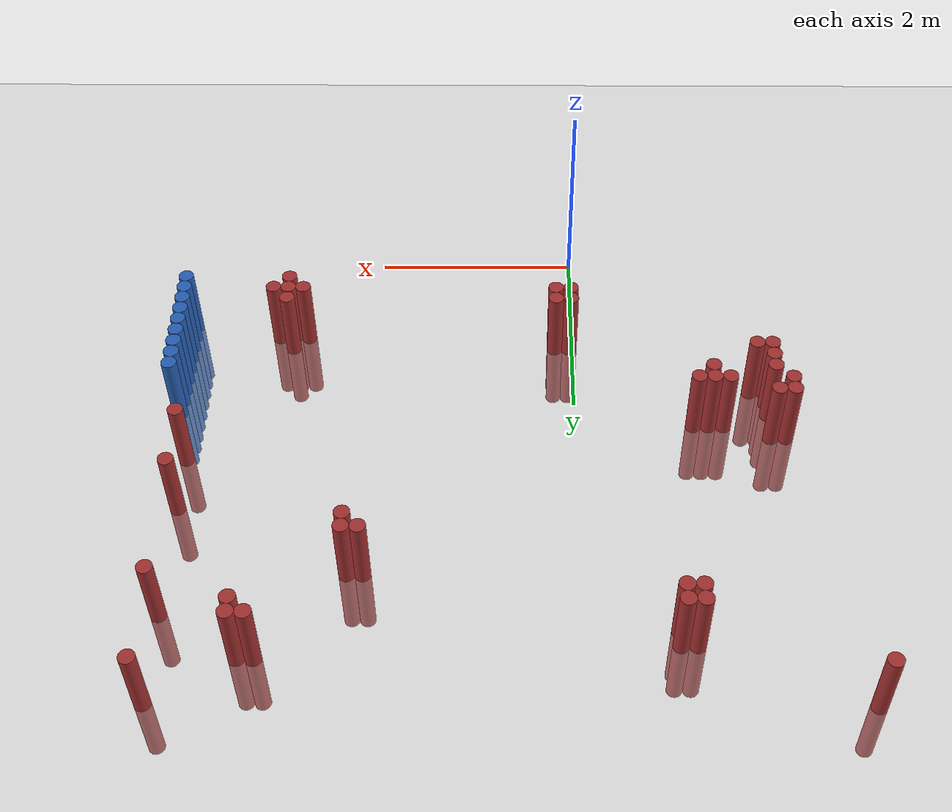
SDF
<sdf version="1.6">
 <world name="default">
  <model name="ground_plane">
   <static>1</static>
   <link name="link">
    <collision name="collision">
     <geometry><plane><normal>0 0 1</normal><size>100 100</size></plane></geometry>
     <surface><friction><ode><mu>100</mu><mu2>50</mu2></ode></friction></surface>
    </collision>
    <visual name="visual">
     <cast_shadows>0</cast_shadows>
     <geometry><plane><normal>0 0 1</normal><size>100 100</size></plane></geometry>
     <material>
      <script><uri>file://media/materials/scripts/gazebo.material</uri><name>Gazebo/Grey</name></script>
     </material>
    </visual>
   </link>
  </model>
  <model name="unit_cylinder_126">
   <static>1</static>
   <pose>3.925000 0.925000 0.000000 0.000000 0.000000 0.000000</pose>
   <link name="link">
    <inertial>
     <mass>1</mass>
     <inertia><ixx>0.145833</ixx><ixy>0</ixy><ixz>0</ixz><iyy>0.145833</iyy><iyz>0</iyz><izz>0.125</izz></inertia>
    </inertial>
    <collision name="collision">
     <geometry><cylinder><radius>0.075000</radius><length>1.5</length></cylinder></geometry>
    </collision>
    <visual name="visual">
     <geometry><cylinder><radius>0.075000</radius><length>1.5</length></cylinder></geometry>
     <material>
      <ambient>0.152000 0.379000 0.720000 1</ambient>
      <diffuse>0.152000 0.379000 0.720000 1</diffuse>
     </material>
     <material>
      <script><name>Gazebo/Grey</name><uri>file://media/materials/scripts/gazebo.material</uri></script>
     </material>
    </visual>
   </link>
  </model>
  <model name="unit_cylinder_128">
   <static>1</static>
   <pose>3.925000 1.075000 0.000000 0.000000 0.000000 0.000000</pose>
   <link name="link">
    <inertial>
     <mass>1</mass>
     <inertia><ixx>0.145833</ixx><ixy>0</ixy><ixz>0</ixz><iyy>0.145833</iyy><iyz>0</iyz><izz>0.125</izz></inertia>
    </inertial>
    <collision name="collision">
     <geometry><cylinder><radius>0.075000</radius><length>1.5</length></cylinder></geometry>
    </collision>
    <visual name="visual">
     <geometry><cylinder><radius>0.075000</radius><length>1.5</length></cylinder></geometry>
     <material>
      <ambient>0.152000 0.379000 0.720000 1</ambient>
      <diffuse>0.152000 0.379000 0.720000 1</diffuse>
     </material>
     <material>
      <script><name>Gazebo/Grey</name><uri>file://media/materials/scripts/gazebo.material</uri></script>
     </material>
    </visual>
   </link>
  </model>
  <model name="unit_cylinder_130">
   <static>1</static>
   <pose>3.925000 1.225000 0.000000 0.000000 0.000000 0.000000</pose>
   <link name="link">
    <inertial>
     <mass>1</mass>
     <inertia><ixx>0.145833</ixx><ixy>0</ixy><ixz>0</ixz><iyy>0.145833</iyy><iyz>0</iyz><izz>0.125</izz></inertia>
    </inertial>
    <collision name="collision">
     <geometry><cylinder><radius>0.075000</radius><length>1.5</length></cylinder></geometry>
    </collision>
    <visual name="visual">
     <geometry><cylinder><radius>0.075000</radius><length>1.5</length></cylinder></geometry>
     <material>
      <ambient>0.152000 0.379000 0.720000 1</ambient>
      <diffuse>0.152000 0.379000 0.720000 1</diffuse>
     </material>
     <material>
      <script><name>Gazebo/Grey</name><uri>file://media/materials/scripts/gazebo.material</uri></script>
     </material>
    </visual>
   </link>
  </model>
  <model name="unit_cylinder_132">
   <static>1</static>
   <pose>3.925000 1.375000 0.000000 0.000000 0.000000 0.000000</pose>
   <link name="link">
    <inertial>
     <mass>1</mass>
     <inertia><ixx>0.145833</ixx><ixy>0</ixy><ixz>0</ixz><iyy>0.145833</iyy><iyz>0</iyz><izz>0.125</izz></inertia>
    </inertial>
    <collision name="collision">
     <geometry><cylinder><radius>0.075000</radius><length>1.5</length></cylinder></geometry>
    </collision>
    <visual name="visual">
     <geometry><cylinder><radius>0.075000</radius><length>1.5</length></cylinder></geometry>
     <material>
      <ambient>0.152000 0.379000 0.720000 1</ambient>
      <diffuse>0.152000 0.379000 0.720000 1</diffuse>
     </material>
     <material>
      <script><name>Gazebo/Grey</name><uri>file://media/materials/scripts/gazebo.material</uri></script>
     </material>
    </visual>
   </link>
  </model>
  <model name="unit_cylinder_134">
   <static>1</static>
   <pose>3.925000 1.525000 0.000000 0.000000 0.000000 0.000000</pose>
   <link name="link">
    <inertial>
     <mass>1</mass>
     <inertia><ixx>0.145833</ixx><ixy>0</ixy><ixz>0</ixz><iyy>0.145833</iyy><iyz>0</iyz><izz>0.125</izz></inertia>
    </inertial>
    <collision name="collision">
     <geometry><cylinder><radius>0.075000</radius><length>1.5</length></cylinder></geometry>
    </collision>
    <visual name="visual">
     <geometry><cylinder><radius>0.075000</radius><length>1.5</length></cylinder></geometry>
     <material>
      <ambient>0.152000 0.379000 0.720000 1</ambient>
      <diffuse>0.152000 0.379000 0.720000 1</diffuse>
     </material>
     <material>
      <script><name>Gazebo/Grey</name><uri>file://media/materials/scripts/gazebo.material</uri></script>
     </material>
    </visual>
   </link>
  </model>
  <model name="unit_cylinder_136">
   <static>1</static>
   <pose>3.925000 1.675000 0.000000 0.000000 0.000000 0.000000</pose>
   <link name="link">
    <inertial>
     <mass>1</mass>
     <inertia><ixx>0.145833</ixx><ixy>0</ixy><ixz>0</ixz><iyy>0.145833</iyy><iyz>0</iyz><izz>0.125</izz></inertia>
    </inertial>
    <collision name="collision">
     <geometry><cylinder><radius>0.075000</radius><length>1.5</length></cylinder></geometry>
    </collision>
    <visual name="visual">
     <geometry><cylinder><radius>0.075000</radius><length>1.5</length></cylinder></geometry>
     <material>
      <ambient>0.152000 0.379000 0.720000 1</ambient>
      <diffuse>0.152000 0.379000 0.720000 1</diffuse>
     </material>
     <material>
      <script><name>Gazebo/Grey</name><uri>file://media/materials/scripts/gazebo.material</uri></script>
     </material>
    </visual>
   </link>
  </model>
  <model name="unit_cylinder_138">
   <static>1</static>
   <pose>3.925000 1.825000 0.000000 0.000000 0.000000 0.000000</pose>
   <link name="link">
    <inertial>
     <mass>1</mass>
     <inertia><ixx>0.145833</ixx><ixy>0</ixy><ixz>0</ixz><iyy>0.145833</iyy><iyz>0</iyz><izz>0.125</izz></inertia>
    </inertial>
    <collision name="collision">
     <geometry><cylinder><radius>0.075000</radius><length>1.5</length></cylinder></geometry>
    </collision>
    <visual name="visual">
     <geometry><cylinder><radius>0.075000</radius><length>1.5</length></cylinder></geometry>
     <material>
      <ambient>0.152000 0.379000 0.720000 1</ambient>
      <diffuse>0.152000 0.379000 0.720000 1</diffuse>
     </material>
     <material>
      <script><name>Gazebo/Grey</name><uri>file://media/materials/scripts/gazebo.material</uri></script>
     </material>
    </visual>
   </link>
  </model>
  <model name="unit_cylinder_140">
   <static>1</static>
   <pose>3.925000 1.975000 0.000000 0.000000 0.000000 0.000000</pose>
   <link name="link">
    <inertial>
     <mass>1</mass>
     <inertia><ixx>0.145833</ixx><ixy>0</ixy><ixz>0</ixz><iyy>0.145833</iyy><iyz>0</iyz><izz>0.125</izz></inertia>
    </inertial>
    <collision name="collision">
     <geometry><cylinder><radius>0.075000</radius><length>1.5</length></cylinder></geometry>
    </collision>
    <visual name="visual">
     <geometry><cylinder><radius>0.075000</radius><length>1.5</length></cylinder></geometry>
     <material>
      <ambient>0.152000 0.379000 0.720000 1</ambient>
      <diffuse>0.152000 0.379000 0.720000 1</diffuse>
     </material>
     <material>
      <script><name>Gazebo/Grey</name><uri>file://media/materials/scripts/gazebo.material</uri></script>
     </material>
    </visual>
   </link>
  </model>
  <model name="unit_cylinder_142">
   <static>1</static>
   <pose>3.925000 2.125000 0.000000 0.000000 0.000000 0.000000</pose>
   <link name="link">
    <inertial>
     <mass>1</mass>
     <inertia><ixx>0.145833</ixx><ixy>0</ixy><ixz>0</ixz><iyy>0.145833</iyy><iyz>0</iyz><izz>0.125</izz></inertia>
    </inertial>
    <collision name="collision">
     <geometry><cylinder><radius>0.075000</radius><length>1.5</length></cylinder></geometry>
    </collision>
    <visual name="visual">
     <geometry><cylinder><radius>0.075000</radius><length>1.5</length></cylinder></geometry>
     <material>
      <ambient>0.152000 0.379000 0.720000 1</ambient>
      <diffuse>0.152000 0.379000 0.720000 1</diffuse>
     </material>
     <material>
      <script><name>Gazebo/Grey</name><uri>file://media/materials/scripts/gazebo.material</uri></script>
     </material>
    </visual>
   </link>
  </model>
  <model name="unit_cylinder_318">
   <static>1</static>
   <pose>-2.525000 5.425000 0.000000 0.000000 0.000000 0.000000</pose>
   <link name="link">
    <inertial>
     <mass>1</mass>
     <inertia><ixx>0.145833</ixx><ixy>0</ixy><ixz>0</ixz><iyy>0.145833</iyy><iyz>0</iyz><izz>0.125</izz></inertia>
    </inertial>
    <collision name="collision">
     <geometry><cylinder><radius>0.075000</radius><length>1.5</length></cylinder></geometry>
    </collision>
    <visual name="visual">
     <geometry><cylinder><radius>0.075000</radius><length>1.5</length></cylinder></geometry>
     <material>
      <ambient>0.648000 0.192000 0.192000 1</ambient>
      <diffuse>0.648000 0.192000 0.192000 1</diffuse>
     </material>
     <material>
      <script><name>Gazebo/Grey</name><uri>file://media/materials/scripts/gazebo.material</uri></script>
     </material>
    </visual>
   </link>
  </model>
  <model name="unit_cylinder_319">
   <static>1</static>
   <pose>-2.075000 2.275000 0.000000 0.000000 0.000000 0.000000</pose>
   <link name="link">
    <inertial>
     <mass>1</mass>
     <inertia><ixx>0.145833</ixx><ixy>0</ixy><ixz>0</ixz><iyy>0.145833</iyy><iyz>0</iyz><izz>0.125</izz></inertia>
    </inertial>
    <collision name="collision">
     <geometry><cylinder><radius>0.075000</radius><length>1.5</length></cylinder></geometry>
    </collision>
    <visual name="visual">
     <geometry><cylinder><radius>0.075000</radius><length>1.5</length></cylinder></geometry>
     <material>
      <ambient>0.648000 0.192000 0.192000 1</ambient>
      <diffuse>0.648000 0.192000 0.192000 1</diffuse>
     </material>
     <material>
      <script><name>Gazebo/Grey</name><uri>file://media/materials/scripts/gazebo.material</uri></script>
     </material>
    </visual>
   </link>
  </model>
  <model name="unit_cylinder_320">
   <static>1</static>
   <pose>-2.075000 2.425000 0.000000 0.000000 0.000000 0.000000</pose>
   <link name="link">
    <inertial>
     <mass>1</mass>
     <inertia><ixx>0.145833</ixx><ixy>0</ixy><ixz>0</ixz><iyy>0.145833</iyy><iyz>0</iyz><izz>0.125</izz></inertia>
    </inertial>
    <collision name="collision">
     <geometry><cylinder><radius>0.075000</radius><length>1.5</length></cylinder></geometry>
    </collision>
    <visual name="visual">
     <geometry><cylinder><radius>0.075000</radius><length>1.5</length></cylinder></geometry>
     <material>
      <ambient>0.648000 0.192000 0.192000 1</ambient>
      <diffuse>0.648000 0.192000 0.192000 1</diffuse>
     </material>
     <material>
      <script><name>Gazebo/Grey</name><uri>file://media/materials/scripts/gazebo.material</uri></script>
     </material>
    </visual>
   </link>
  </model>
  <model name="unit_cylinder_321">
   <static>1</static>
   <pose>-1.925000 1.825000 0.000000 0.000000 0.000000 0.000000</pose>
   <link name="link">
    <inertial>
     <mass>1</mass>
     <inertia><ixx>0.145833</ixx><ixy>0</ixy><ixz>0</ixz><iyy>0.145833</iyy><iyz>0</iyz><izz>0.125</izz></inertia>
    </inertial>
    <collision name="collision">
     <geometry><cylinder><radius>0.075000</radius><length>1.5</length></cylinder></geometry>
    </collision>
    <visual name="visual">
     <geometry><cylinder><radius>0.075000</radius><length>1.5</length></cylinder></geometry>
     <material>
      <ambient>0.648000 0.192000 0.192000 1</ambient>
      <diffuse>0.648000 0.192000 0.192000 1</diffuse>
     </material>
     <material>
      <script><name>Gazebo/Grey</name><uri>file://media/materials/scripts/gazebo.material</uri></script>
     </material>
    </visual>
   </link>
  </model>
  <model name="unit_cylinder_322">
   <static>1</static>
   <pose>-1.925000 1.975000 0.000000 0.000000 0.000000 0.000000</pose>
   <link name="link">
    <inertial>
     <mass>1</mass>
     <inertia><ixx>0.145833</ixx><ixy>0</ixy><ixz>0</ixz><iyy>0.145833</iyy><iyz>0</iyz><izz>0.125</izz></inertia>
    </inertial>
    <collision name="collision">
     <geometry><cylinder><radius>0.075000</radius><length>1.5</length></cylinder></geometry>
    </collision>
    <visual name="visual">
     <geometry><cylinder><radius>0.075000</radius><length>1.5</length></cylinder></geometry>
     <material>
      <ambient>0.648000 0.192000 0.192000 1</ambient>
      <diffuse>0.648000 0.192000 0.192000 1</diffuse>
     </material>
     <material>
      <script><name>Gazebo/Grey</name><uri>file://media/materials/scripts/gazebo.material</uri></script>
     </material>
    </visual>
   </link>
  </model>
  <model name="unit_cylinder_323">
   <static>1</static>
   <pose>-1.925000 2.125000 0.000000 0.000000 0.000000 0.000000</pose>
   <link name="link">
    <inertial>
     <mass>1</mass>
     <inertia><ixx>0.145833</ixx><ixy>0</ixy><ixz>0</ixz><iyy>0.145833</iyy><iyz>0</iyz><izz>0.125</izz></inertia>
    </inertial>
    <collision name="collision">
     <geometry><cylinder><radius>0.075000</radius><length>1.5</length></cylinder></geometry>
    </collision>
    <visual name="visual">
     <geometry><cylinder><radius>0.075000</radius><length>1.5</length></cylinder></geometry>
     <material>
      <ambient>0.648000 0.192000 0.192000 1</ambient>
      <diffuse>0.648000 0.192000 0.192000 1</diffuse>
     </material>
     <material>
      <script><name>Gazebo/Grey</name><uri>file://media/materials/scripts/gazebo.material</uri></script>
     </material>
    </visual>
   </link>
  </model>
  <model name="unit_cylinder_324">
   <static>1</static>
   <pose>-1.925000 2.425000 0.000000 0.000000 0.000000 0.000000</pose>
   <link name="link">
    <inertial>
     <mass>1</mass>
     <inertia><ixx>0.145833</ixx><ixy>0</ixy><ixz>0</ixz><iyy>0.145833</iyy><iyz>0</iyz><izz>0.125</izz></inertia>
    </inertial>
    <collision name="collision">
     <geometry><cylinder><radius>0.075000</radius><length>1.5</length></cylinder></geometry>
    </collision>
    <visual name="visual">
     <geometry><cylinder><radius>0.075000</radius><length>1.5</length></cylinder></geometry>
     <material>
      <ambient>0.648000 0.192000 0.192000 1</ambient>
      <diffuse>0.648000 0.192000 0.192000 1</diffuse>
     </material>
     <material>
      <script><name>Gazebo/Grey</name><uri>file://media/materials/scripts/gazebo.material</uri></script>
     </material>
    </visual>
   </link>
  </model>
  <model name="unit_cylinder_325">
   <static>1</static>
   <pose>-1.775000 1.825000 0.000000 0.000000 0.000000 0.000000</pose>
   <link name="link">
    <inertial>
     <mass>1</mass>
     <inertia><ixx>0.145833</ixx><ixy>0</ixy><ixz>0</ixz><iyy>0.145833</iyy><iyz>0</iyz><izz>0.125</izz></inertia>
    </inertial>
    <collision name="collision">
     <geometry><cylinder><radius>0.075000</radius><length>1.5</length></cylinder></geometry>
    </collision>
    <visual name="visual">
     <geometry><cylinder><radius>0.075000</radius><length>1.5</length></cylinder></geometry>
     <material>
      <ambient>0.648000 0.192000 0.192000 1</ambient>
      <diffuse>0.648000 0.192000 0.192000 1</diffuse>
     </material>
     <material>
      <script><name>Gazebo/Grey</name><uri>file://media/materials/scripts/gazebo.material</uri></script>
     </material>
    </visual>
   </link>
  </model>
  <model name="unit_cylinder_326">
   <static>1</static>
   <pose>-1.475000 2.275000 0.000000 0.000000 0.000000 0.000000</pose>
   <link name="link">
    <inertial>
     <mass>1</mass>
     <inertia><ixx>0.145833</ixx><ixy>0</ixy><ixz>0</ixz><iyy>0.145833</iyy><iyz>0</iyz><izz>0.125</izz></inertia>
    </inertial>
    <collision name="collision">
     <geometry><cylinder><radius>0.075000</radius><length>1.5</length></cylinder></geometry>
    </collision>
    <visual name="visual">
     <geometry><cylinder><radius>0.075000</radius><length>1.5</length></cylinder></geometry>
     <material>
      <ambient>0.648000 0.192000 0.192000 1</ambient>
      <diffuse>0.648000 0.192000 0.192000 1</diffuse>
     </material>
     <material>
      <script><name>Gazebo/Grey</name><uri>file://media/materials/scripts/gazebo.material</uri></script>
     </material>
    </visual>
   </link>
  </model>
  <model name="unit_cylinder_327">
   <static>1</static>
   <pose>-1.325000 2.125000 0.000000 0.000000 0.000000 0.000000</pose>
   <link name="link">
    <inertial>
     <mass>1</mass>
     <inertia><ixx>0.145833</ixx><ixy>0</ixy><ixz>0</ixz><iyy>0.145833</iyy><iyz>0</iyz><izz>0.125</izz></inertia>
    </inertial>
    <collision name="collision">
     <geometry><cylinder><radius>0.075000</radius><length>1.5</length></cylinder></geometry>
    </collision>
    <visual name="visual">
     <geometry><cylinder><radius>0.075000</radius><length>1.5</length></cylinder></geometry>
     <material>
      <ambient>0.648000 0.192000 0.192000 1</ambient>
      <diffuse>0.648000 0.192000 0.192000 1</diffuse>
     </material>
     <material>
      <script><name>Gazebo/Grey</name><uri>file://media/materials/scripts/gazebo.material</uri></script>
     </material>
    </visual>
   </link>
  </model>
  <model name="unit_cylinder_328">
   <static>1</static>
   <pose>-1.325000 2.275000 0.000000 0.000000 0.000000 0.000000</pose>
   <link name="link">
    <inertial>
     <mass>1</mass>
     <inertia><ixx>0.145833</ixx><ixy>0</ixy><ixz>0</ixz><iyy>0.145833</iyy><iyz>0</iyz><izz>0.125</izz></inertia>
    </inertial>
    <collision name="collision">
     <geometry><cylinder><radius>0.075000</radius><length>1.5</length></cylinder></geometry>
    </collision>
    <visual name="visual">
     <geometry><cylinder><radius>0.075000</radius><length>1.5</length></cylinder></geometry>
     <material>
      <ambient>0.648000 0.192000 0.192000 1</ambient>
      <diffuse>0.648000 0.192000 0.192000 1</diffuse>
     </material>
     <material>
      <script><name>Gazebo/Grey</name><uri>file://media/materials/scripts/gazebo.material</uri></script>
     </material>
    </visual>
   </link>
  </model>
  <model name="unit_cylinder_329">
   <static>1</static>
   <pose>-1.175000 2.275000 0.000000 0.000000 0.000000 0.000000</pose>
   <link name="link">
    <inertial>
     <mass>1</mass>
     <inertia><ixx>0.145833</ixx><ixy>0</ixy><ixz>0</ixz><iyy>0.145833</iyy><iyz>0</iyz><izz>0.125</izz></inertia>
    </inertial>
    <collision name="collision">
     <geometry><cylinder><radius>0.075000</radius><length>1.5</length></cylinder></geometry>
    </collision>
    <visual name="visual">
     <geometry><cylinder><radius>0.075000</radius><length>1.5</length></cylinder></geometry>
     <material>
      <ambient>0.648000 0.192000 0.192000 1</ambient>
      <diffuse>0.648000 0.192000 0.192000 1</diffuse>
     </material>
     <material>
      <script><name>Gazebo/Grey</name><uri>file://media/materials/scripts/gazebo.material</uri></script>
     </material>
    </visual>
   </link>
  </model>
  <model name="unit_cylinder_330">
   <static>1</static>
   <pose>-1.025000 4.675000 0.000000 0.000000 0.000000 0.000000</pose>
   <link name="link">
    <inertial>
     <mass>1</mass>
     <inertia><ixx>0.145833</ixx><ixy>0</ixy><ixz>0</ixz><iyy>0.145833</iyy><iyz>0</iyz><izz>0.125</izz></inertia>
    </inertial>
    <collision name="collision">
     <geometry><cylinder><radius>0.075000</radius><length>1.5</length></cylinder></geometry>
    </collision>
    <visual name="visual">
     <geometry><cylinder><radius>0.075000</radius><length>1.5</length></cylinder></geometry>
     <material>
      <ambient>0.648000 0.192000 0.192000 1</ambient>
      <diffuse>0.648000 0.192000 0.192000 1</diffuse>
     </material>
     <material>
      <script><name>Gazebo/Grey</name><uri>file://media/materials/scripts/gazebo.material</uri></script>
     </material>
    </visual>
   </link>
  </model>
  <model name="unit_cylinder_331">
   <static>1</static>
   <pose>-1.025000 4.825000 0.000000 0.000000 0.000000 0.000000</pose>
   <link name="link">
    <inertial>
     <mass>1</mass>
     <inertia><ixx>0.145833</ixx><ixy>0</ixy><ixz>0</ixz><iyy>0.145833</iyy><iyz>0</iyz><izz>0.125</izz></inertia>
    </inertial>
    <collision name="collision">
     <geometry><cylinder><radius>0.075000</radius><length>1.5</length></cylinder></geometry>
    </collision>
    <visual name="visual">
     <geometry><cylinder><radius>0.075000</radius><length>1.5</length></cylinder></geometry>
     <material>
      <ambient>0.648000 0.192000 0.192000 1</ambient>
      <diffuse>0.648000 0.192000 0.192000 1</diffuse>
     </material>
     <material>
      <script><name>Gazebo/Grey</name><uri>file://media/materials/scripts/gazebo.material</uri></script>
     </material>
    </visual>
   </link>
  </model>
  <model name="unit_cylinder_332">
   <static>1</static>
   <pose>-0.875000 4.675000 0.000000 0.000000 0.000000 0.000000</pose>
   <link name="link">
    <inertial>
     <mass>1</mass>
     <inertia><ixx>0.145833</ixx><ixy>0</ixy><ixz>0</ixz><iyy>0.145833</iyy><iyz>0</iyz><izz>0.125</izz></inertia>
    </inertial>
    <collision name="collision">
     <geometry><cylinder><radius>0.075000</radius><length>1.5</length></cylinder></geometry>
    </collision>
    <visual name="visual">
     <geometry><cylinder><radius>0.075000</radius><length>1.5</length></cylinder></geometry>
     <material>
      <ambient>0.648000 0.192000 0.192000 1</ambient>
      <diffuse>0.648000 0.192000 0.192000 1</diffuse>
     </material>
     <material>
      <script><name>Gazebo/Grey</name><uri>file://media/materials/scripts/gazebo.material</uri></script>
     </material>
    </visual>
   </link>
  </model>
  <model name="unit_cylinder_333">
   <static>1</static>
   <pose>-0.875000 4.825000 0.000000 0.000000 0.000000 0.000000</pose>
   <link name="link">
    <inertial>
     <mass>1</mass>
     <inertia><ixx>0.145833</ixx><ixy>0</ixy><ixz>0</ixz><iyy>0.145833</iyy><iyz>0</iyz><izz>0.125</izz></inertia>
    </inertial>
    <collision name="collision">
     <geometry><cylinder><radius>0.075000</radius><length>1.5</length></cylinder></geometry>
    </collision>
    <visual name="visual">
     <geometry><cylinder><radius>0.075000</radius><length>1.5</length></cylinder></geometry>
     <material>
      <ambient>0.648000 0.192000 0.192000 1</ambient>
      <diffuse>0.648000 0.192000 0.192000 1</diffuse>
     </material>
     <material>
      <script><name>Gazebo/Grey</name><uri>file://media/materials/scripts/gazebo.material</uri></script>
     </material>
    </visual>
   </link>
  </model>
  <model name="unit_cylinder_338">
   <static>1</static>
   <pose>0.025000 1.075000 0.000000 0.000000 0.000000 0.000000</pose>
   <link name="link">
    <inertial>
     <mass>1</mass>
     <inertia><ixx>0.145833</ixx><ixy>0</ixy><ixz>0</ixz><iyy>0.145833</iyy><iyz>0</iyz><izz>0.125</izz></inertia>
    </inertial>
    <collision name="collision">
     <geometry><cylinder><radius>0.075000</radius><length>1.5</length></cylinder></geometry>
    </collision>
    <visual name="visual">
     <geometry><cylinder><radius>0.075000</radius><length>1.5</length></cylinder></geometry>
     <material>
      <ambient>0.648000 0.192000 0.192000 1</ambient>
      <diffuse>0.648000 0.192000 0.192000 1</diffuse>
     </material>
     <material>
      <script><name>Gazebo/Grey</name><uri>file://media/materials/scripts/gazebo.material</uri></script>
     </material>
    </visual>
   </link>
  </model>
  <model name="unit_cylinder_339">
   <static>1</static>
   <pose>0.025000 1.225000 0.000000 0.000000 0.000000 0.000000</pose>
   <link name="link">
    <inertial>
     <mass>1</mass>
     <inertia><ixx>0.145833</ixx><ixy>0</ixy><ixz>0</ixz><iyy>0.145833</iyy><iyz>0</iyz><izz>0.125</izz></inertia>
    </inertial>
    <collision name="collision">
     <geometry><cylinder><radius>0.075000</radius><length>1.5</length></cylinder></geometry>
    </collision>
    <visual name="visual">
     <geometry><cylinder><radius>0.075000</radius><length>1.5</length></cylinder></geometry>
     <material>
      <ambient>0.648000 0.192000 0.192000 1</ambient>
      <diffuse>0.648000 0.192000 0.192000 1</diffuse>
     </material>
     <material>
      <script><name>Gazebo/Grey</name><uri>file://media/materials/scripts/gazebo.material</uri></script>
     </material>
    </visual>
   </link>
  </model>
  <model name="unit_cylinder_340">
   <static>1</static>
   <pose>0.175000 1.075000 0.000000 0.000000 0.000000 0.000000</pose>
   <link name="link">
    <inertial>
     <mass>1</mass>
     <inertia><ixx>0.145833</ixx><ixy>0</ixy><ixz>0</ixz><iyy>0.145833</iyy><iyz>0</iyz><izz>0.125</izz></inertia>
    </inertial>
    <collision name="collision">
     <geometry><cylinder><radius>0.075000</radius><length>1.5</length></cylinder></geometry>
    </collision>
    <visual name="visual">
     <geometry><cylinder><radius>0.075000</radius><length>1.5</length></cylinder></geometry>
     <material>
      <ambient>0.648000 0.192000 0.192000 1</ambient>
      <diffuse>0.648000 0.192000 0.192000 1</diffuse>
     </material>
     <material>
      <script><name>Gazebo/Grey</name><uri>file://media/materials/scripts/gazebo.material</uri></script>
     </material>
    </visual>
   </link>
  </model>
  <model name="unit_cylinder_341">
   <static>1</static>
   <pose>0.175000 1.225000 0.000000 0.000000 0.000000 0.000000</pose>
   <link name="link">
    <inertial>
     <mass>1</mass>
     <inertia><ixx>0.145833</ixx><ixy>0</ixy><ixz>0</ixz><iyy>0.145833</iyy><iyz>0</iyz><izz>0.125</izz></inertia>
    </inertial>
    <collision name="collision">
     <geometry><cylinder><radius>0.075000</radius><length>1.5</length></cylinder></geometry>
    </collision>
    <visual name="visual">
     <geometry><cylinder><radius>0.075000</radius><length>1.5</length></cylinder></geometry>
     <material>
      <ambient>0.648000 0.192000 0.192000 1</ambient>
      <diffuse>0.648000 0.192000 0.192000 1</diffuse>
     </material>
     <material>
      <script><name>Gazebo/Grey</name><uri>file://media/materials/scripts/gazebo.material</uri></script>
     </material>
    </visual>
   </link>
  </model>
  <model name="unit_cylinder_342">
   <static>1</static>
   <pose>1.975000 4.075000 0.000000 0.000000 0.000000 0.000000</pose>
   <link name="link">
    <inertial>
     <mass>1</mass>
     <inertia><ixx>0.145833</ixx><ixy>0</ixy><ixz>0</ixz><iyy>0.145833</iyy><iyz>0</iyz><izz>0.125</izz></inertia>
    </inertial>
    <collision name="collision">
     <geometry><cylinder><radius>0.075000</radius><length>1.5</length></cylinder></geometry>
    </collision>
    <visual name="visual">
     <geometry><cylinder><radius>0.075000</radius><length>1.5</length></cylinder></geometry>
     <material>
      <ambient>0.648000 0.192000 0.192000 1</ambient>
      <diffuse>0.648000 0.192000 0.192000 1</diffuse>
     </material>
     <material>
      <script><name>Gazebo/Grey</name><uri>file://media/materials/scripts/gazebo.material</uri></script>
     </material>
    </visual>
   </link>
  </model>
  <model name="unit_cylinder_343">
   <static>1</static>
   <pose>2.125000 3.925000 0.000000 0.000000 0.000000 0.000000</pose>
   <link name="link">
    <inertial>
     <mass>1</mass>
     <inertia><ixx>0.145833</ixx><ixy>0</ixy><ixz>0</ixz><iyy>0.145833</iyy><iyz>0</iyz><izz>0.125</izz></inertia>
    </inertial>
    <collision name="collision">
     <geometry><cylinder><radius>0.075000</radius><length>1.5</length></cylinder></geometry>
    </collision>
    <visual name="visual">
     <geometry><cylinder><radius>0.075000</radius><length>1.5</length></cylinder></geometry>
     <material>
      <ambient>0.648000 0.192000 0.192000 1</ambient>
      <diffuse>0.648000 0.192000 0.192000 1</diffuse>
     </material>
     <material>
      <script><name>Gazebo/Grey</name><uri>file://media/materials/scripts/gazebo.material</uri></script>
     </material>
    </visual>
   </link>
  </model>
  <model name="unit_cylinder_344">
   <static>1</static>
   <pose>2.125000 4.075000 0.000000 0.000000 0.000000 0.000000</pose>
   <link name="link">
    <inertial>
     <mass>1</mass>
     <inertia><ixx>0.145833</ixx><ixy>0</ixy><ixz>0</ixz><iyy>0.145833</iyy><iyz>0</iyz><izz>0.125</izz></inertia>
    </inertial>
    <collision name="collision">
     <geometry><cylinder><radius>0.075000</radius><length>1.5</length></cylinder></geometry>
    </collision>
    <visual name="visual">
     <geometry><cylinder><radius>0.075000</radius><length>1.5</length></cylinder></geometry>
     <material>
      <ambient>0.648000 0.192000 0.192000 1</ambient>
      <diffuse>0.648000 0.192000 0.192000 1</diffuse>
     </material>
     <material>
      <script><name>Gazebo/Grey</name><uri>file://media/materials/scripts/gazebo.material</uri></script>
     </material>
    </visual>
   </link>
  </model>
  <model name="unit_cylinder_349">
   <static>1</static>
   <pose>2.725000 1.075000 0.000000 0.000000 0.000000 0.000000</pose>
   <link name="link">
    <inertial>
     <mass>1</mass>
     <inertia><ixx>0.145833</ixx><ixy>0</ixy><ixz>0</ixz><iyy>0.145833</iyy><iyz>0</iyz><izz>0.125</izz></inertia>
    </inertial>
    <collision name="collision">
     <geometry><cylinder><radius>0.075000</radius><length>1.5</length></cylinder></geometry>
    </collision>
    <visual name="visual">
     <geometry><cylinder><radius>0.075000</radius><length>1.5</length></cylinder></geometry>
     <material>
      <ambient>0.648000 0.192000 0.192000 1</ambient>
      <diffuse>0.648000 0.192000 0.192000 1</diffuse>
     </material>
     <material>
      <script><name>Gazebo/Grey</name><uri>file://media/materials/scripts/gazebo.material</uri></script>
     </material>
    </visual>
   </link>
  </model>
  <model name="unit_cylinder_353">
   <static>1</static>
   <pose>2.875000 0.925000 0.000000 0.000000 0.000000 0.000000</pose>
   <link name="link">
    <inertial>
     <mass>1</mass>
     <inertia><ixx>0.145833</ixx><ixy>0</ixy><ixz>0</ixz><iyy>0.145833</iyy><iyz>0</iyz><izz>0.125</izz></inertia>
    </inertial>
    <collision name="collision">
     <geometry><cylinder><radius>0.075000</radius><length>1.5</length></cylinder></geometry>
    </collision>
    <visual name="visual">
     <geometry><cylinder><radius>0.075000</radius><length>1.5</length></cylinder></geometry>
     <material>
      <ambient>0.648000 0.192000 0.192000 1</ambient>
      <diffuse>0.648000 0.192000 0.192000 1</diffuse>
     </material>
     <material>
      <script><name>Gazebo/Grey</name><uri>file://media/materials/scripts/gazebo.material</uri></script>
     </material>
    </visual>
   </link>
  </model>
  <model name="unit_cylinder_354">
   <static>1</static>
   <pose>2.875000 1.075000 0.000000 0.000000 0.000000 0.000000</pose>
   <link name="link">
    <inertial>
     <mass>1</mass>
     <inertia><ixx>0.145833</ixx><ixy>0</ixy><ixz>0</ixz><iyy>0.145833</iyy><iyz>0</iyz><izz>0.125</izz></inertia>
    </inertial>
    <collision name="collision">
     <geometry><cylinder><radius>0.075000</radius><length>1.5</length></cylinder></geometry>
    </collision>
    <visual name="visual">
     <geometry><cylinder><radius>0.075000</radius><length>1.5</length></cylinder></geometry>
     <material>
      <ambient>0.648000 0.192000 0.192000 1</ambient>
      <diffuse>0.648000 0.192000 0.192000 1</diffuse>
     </material>
     <material>
      <script><name>Gazebo/Grey</name><uri>file://media/materials/scripts/gazebo.material</uri></script>
     </material>
    </visual>
   </link>
  </model>
  <model name="unit_cylinder_355">
   <static>1</static>
   <pose>2.875000 1.225000 0.000000 0.000000 0.000000 0.000000</pose>
   <link name="link">
    <inertial>
     <mass>1</mass>
     <inertia><ixx>0.145833</ixx><ixy>0</ixy><ixz>0</ixz><iyy>0.145833</iyy><iyz>0</iyz><izz>0.125</izz></inertia>
    </inertial>
    <collision name="collision">
     <geometry><cylinder><radius>0.075000</radius><length>1.5</length></cylinder></geometry>
    </collision>
    <visual name="visual">
     <geometry><cylinder><radius>0.075000</radius><length>1.5</length></cylinder></geometry>
     <material>
      <ambient>0.648000 0.192000 0.192000 1</ambient>
      <diffuse>0.648000 0.192000 0.192000 1</diffuse>
     </material>
     <material>
      <script><name>Gazebo/Grey</name><uri>file://media/materials/scripts/gazebo.material</uri></script>
     </material>
    </visual>
   </link>
  </model>
  <model name="unit_cylinder_356">
   <static>1</static>
   <pose>2.875000 4.975000 0.000000 0.000000 0.000000 0.000000</pose>
   <link name="link">
    <inertial>
     <mass>1</mass>
     <inertia><ixx>0.145833</ixx><ixy>0</ixy><ixz>0</ixz><iyy>0.145833</iyy><iyz>0</iyz><izz>0.125</izz></inertia>
    </inertial>
    <collision name="collision">
     <geometry><cylinder><radius>0.075000</radius><length>1.5</length></cylinder></geometry>
    </collision>
    <visual name="visual">
     <geometry><cylinder><radius>0.075000</radius><length>1.5</length></cylinder></geometry>
     <material>
      <ambient>0.648000 0.192000 0.192000 1</ambient>
      <diffuse>0.648000 0.192000 0.192000 1</diffuse>
     </material>
     <material>
      <script><name>Gazebo/Grey</name><uri>file://media/materials/scripts/gazebo.material</uri></script>
     </material>
    </visual>
   </link>
  </model>
  <model name="unit_cylinder_360">
   <static>1</static>
   <pose>3.025000 1.075000 0.000000 0.000000 0.000000 0.000000</pose>
   <link name="link">
    <inertial>
     <mass>1</mass>
     <inertia><ixx>0.145833</ixx><ixy>0</ixy><ixz>0</ixz><iyy>0.145833</iyy><iyz>0</iyz><izz>0.125</izz></inertia>
    </inertial>
    <collision name="collision">
     <geometry><cylinder><radius>0.075000</radius><length>1.5</length></cylinder></geometry>
    </collision>
    <visual name="visual">
     <geometry><cylinder><radius>0.075000</radius><length>1.5</length></cylinder></geometry>
     <material>
      <ambient>0.648000 0.192000 0.192000 1</ambient>
      <diffuse>0.648000 0.192000 0.192000 1</diffuse>
     </material>
     <material>
      <script><name>Gazebo/Grey</name><uri>file://media/materials/scripts/gazebo.material</uri></script>
     </material>
    </visual>
   </link>
  </model>
  <model name="unit_cylinder_361">
   <static>1</static>
   <pose>3.025000 4.825000 0.000000 0.000000 0.000000 0.000000</pose>
   <link name="link">
    <inertial>
     <mass>1</mass>
     <inertia><ixx>0.145833</ixx><ixy>0</ixy><ixz>0</ixz><iyy>0.145833</iyy><iyz>0</iyz><izz>0.125</izz></inertia>
    </inertial>
    <collision name="collision">
     <geometry><cylinder><radius>0.075000</radius><length>1.5</length></cylinder></geometry>
    </collision>
    <visual name="visual">
     <geometry><cylinder><radius>0.075000</radius><length>1.5</length></cylinder></geometry>
     <material>
      <ambient>0.648000 0.192000 0.192000 1</ambient>
      <diffuse>0.648000 0.192000 0.192000 1</diffuse>
     </material>
     <material>
      <script><name>Gazebo/Grey</name><uri>file://media/materials/scripts/gazebo.material</uri></script>
     </material>
    </visual>
   </link>
  </model>
  <model name="unit_cylinder_362">
   <static>1</static>
   <pose>3.025000 4.975000 0.000000 0.000000 0.000000 0.000000</pose>
   <link name="link">
    <inertial>
     <mass>1</mass>
     <inertia><ixx>0.145833</ixx><ixy>0</ixy><ixz>0</ixz><iyy>0.145833</iyy><iyz>0</iyz><izz>0.125</izz></inertia>
    </inertial>
    <collision name="collision">
     <geometry><cylinder><radius>0.075000</radius><length>1.5</length></cylinder></geometry>
    </collision>
    <visual name="visual">
     <geometry><cylinder><radius>0.075000</radius><length>1.5</length></cylinder></geometry>
     <material>
      <ambient>0.648000 0.192000 0.192000 1</ambient>
      <diffuse>0.648000 0.192000 0.192000 1</diffuse>
     </material>
     <material>
      <script><name>Gazebo/Grey</name><uri>file://media/materials/scripts/gazebo.material</uri></script>
     </material>
    </visual>
   </link>
  </model>
  <model name="unit_cylinder_374">
   <static>1</static>
   <pose>3.775000 2.725000 0.000000 0.000000 0.000000 0.000000</pose>
   <link name="link">
    <inertial>
     <mass>1</mass>
     <inertia><ixx>0.145833</ixx><ixy>0</ixy><ixz>0</ixz><iyy>0.145833</iyy><iyz>0</iyz><izz>0.125</izz></inertia>
    </inertial>
    <collision name="collision">
     <geometry><cylinder><radius>0.075000</radius><length>1.5</length></cylinder></geometry>
    </collision>
    <visual name="visual">
     <geometry><cylinder><radius>0.075000</radius><length>1.5</length></cylinder></geometry>
     <material>
      <ambient>0.648000 0.192000 0.192000 1</ambient>
      <diffuse>0.648000 0.192000 0.192000 1</diffuse>
     </material>
     <material>
      <script><name>Gazebo/Grey</name><uri>file://media/materials/scripts/gazebo.material</uri></script>
     </material>
    </visual>
   </link>
  </model>
  <model name="unit_cylinder_375">
   <static>1</static>
   <pose>3.775000 3.325000 0.000000 0.000000 0.000000 0.000000</pose>
   <link name="link">
    <inertial>
     <mass>1</mass>
     <inertia><ixx>0.145833</ixx><ixy>0</ixy><ixz>0</ixz><iyy>0.145833</iyy><iyz>0</iyz><izz>0.125</izz></inertia>
    </inertial>
    <collision name="collision">
     <geometry><cylinder><radius>0.075000</radius><length>1.5</length></cylinder></geometry>
    </collision>
    <visual name="visual">
     <geometry><cylinder><radius>0.075000</radius><length>1.5</length></cylinder></geometry>
     <material>
      <ambient>0.648000 0.192000 0.192000 1</ambient>
      <diffuse>0.648000 0.192000 0.192000 1</diffuse>
     </material>
     <material>
      <script><name>Gazebo/Grey</name><uri>file://media/materials/scripts/gazebo.material</uri></script>
     </material>
    </visual>
   </link>
  </model>
  <model name="unit_cylinder_376">
   <static>1</static>
   <pose>3.775000 4.525000 0.000000 0.000000 0.000000 0.000000</pose>
   <link name="link">
    <inertial>
     <mass>1</mass>
     <inertia><ixx>0.145833</ixx><ixy>0</ixy><ixz>0</ixz><iyy>0.145833</iyy><iyz>0</iyz><izz>0.125</izz></inertia>
    </inertial>
    <collision name="collision">
     <geometry><cylinder><radius>0.075000</radius><length>1.5</length></cylinder></geometry>
    </collision>
    <visual name="visual">
     <geometry><cylinder><radius>0.075000</radius><length>1.5</length></cylinder></geometry>
     <material>
      <ambient>0.648000 0.192000 0.192000 1</ambient>
      <diffuse>0.648000 0.192000 0.192000 1</diffuse>
     </material>
     <material>
      <script><name>Gazebo/Grey</name><uri>file://media/materials/scripts/gazebo.material</uri></script>
     </material>
    </visual>
   </link>
  </model>
  <model name="unit_cylinder_377">
   <static>1</static>
   <pose>3.775000 5.425000 0.000000 0.000000 0.000000 0.000000</pose>
   <link name="link">
    <inertial>
     <mass>1</mass>
     <inertia><ixx>0.145833</ixx><ixy>0</ixy><ixz>0</ixz><iyy>0.145833</iyy><iyz>0</iyz><izz>0.125</izz></inertia>
    </inertial>
    <collision name="collision">
     <geometry><cylinder><radius>0.075000</radius><length>1.5</length></cylinder></geometry>
    </collision>
    <visual name="visual">
     <geometry><cylinder><radius>0.075000</radius><length>1.5</length></cylinder></geometry>
     <material>
      <ambient>0.648000 0.192000 0.192000 1</ambient>
      <diffuse>0.648000 0.192000 0.192000 1</diffuse>
     </material>
     <material>
      <script><name>Gazebo/Grey</name><uri>file://media/materials/scripts/gazebo.material</uri></script>
     </material>
    </visual>
   </link>
  </model>
  <model name="unit_cylinder_397">
   <static>1</static>
   <pose>3.925000 0.925000 0.000000 0.000000 0.000000 0.000000</pose>
   <link name="link">
    <inertial>
     <mass>1</mass>
     <inertia><ixx>0.145833</ixx><ixy>0</ixy><ixz>0</ixz><iyy>0.145833</iyy><iyz>0</iyz><izz>0.125</izz></inertia>
    </inertial>
    <collision name="collision">
     <geometry><cylinder><radius>0.075000</radius><length>1.5</length></cylinder></geometry>
    </collision>
    <visual name="visual">
     <geometry><cylinder><radius>0.075000</radius><length>1.5</length></cylinder></geometry>
     <material>
      <ambient>0.152000 0.379000 0.720000 1</ambient>
      <diffuse>0.152000 0.379000 0.720000 1</diffuse>
     </material>
     <material>
      <script><name>Gazebo/Grey</name><uri>file://media/materials/scripts/gazebo.material</uri></script>
     </material>
    </visual>
   </link>
  </model>
  <model name="unit_cylinder_398">
   <static>1</static>
   <pose>3.925000 1.075000 0.000000 0.000000 0.000000 0.000000</pose>
   <link name="link">
    <inertial>
     <mass>1</mass>
     <inertia><ixx>0.145833</ixx><ixy>0</ixy><ixz>0</ixz><iyy>0.145833</iyy><iyz>0</iyz><izz>0.125</izz></inertia>
    </inertial>
    <collision name="collision">
     <geometry><cylinder><radius>0.075000</radius><length>1.5</length></cylinder></geometry>
    </collision>
    <visual name="visual">
     <geometry><cylinder><radius>0.075000</radius><length>1.5</length></cylinder></geometry>
     <material>
      <ambient>0.152000 0.379000 0.720000 1</ambient>
      <diffuse>0.152000 0.379000 0.720000 1</diffuse>
     </material>
     <material>
      <script><name>Gazebo/Grey</name><uri>file://media/materials/scripts/gazebo.material</uri></script>
     </material>
    </visual>
   </link>
  </model>
  <model name="unit_cylinder_399">
   <static>1</static>
   <pose>3.925000 1.225000 0.000000 0.000000 0.000000 0.000000</pose>
   <link name="link">
    <inertial>
     <mass>1</mass>
     <inertia><ixx>0.145833</ixx><ixy>0</ixy><ixz>0</ixz><iyy>0.145833</iyy><iyz>0</iyz><izz>0.125</izz></inertia>
    </inertial>
    <collision name="collision">
     <geometry><cylinder><radius>0.075000</radius><length>1.5</length></cylinder></geometry>
    </collision>
    <visual name="visual">
     <geometry><cylinder><radius>0.075000</radius><length>1.5</length></cylinder></geometry>
     <material>
      <ambient>0.152000 0.379000 0.720000 1</ambient>
      <diffuse>0.152000 0.379000 0.720000 1</diffuse>
     </material>
     <material>
      <script><name>Gazebo/Grey</name><uri>file://media/materials/scripts/gazebo.material</uri></script>
     </material>
    </visual>
   </link>
  </model>
  <model name="unit_cylinder_400">
   <static>1</static>
   <pose>3.925000 1.375000 0.000000 0.000000 0.000000 0.000000</pose>
   <link name="link">
    <inertial>
     <mass>1</mass>
     <inertia><ixx>0.145833</ixx><ixy>0</ixy><ixz>0</ixz><iyy>0.145833</iyy><iyz>0</iyz><izz>0.125</izz></inertia>
    </inertial>
    <collision name="collision">
     <geometry><cylinder><radius>0.075000</radius><length>1.5</length></cylinder></geometry>
    </collision>
    <visual name="visual">
     <geometry><cylinder><radius>0.075000</radius><length>1.5</length></cylinder></geometry>
     <material>
      <ambient>0.152000 0.379000 0.720000 1</ambient>
      <diffuse>0.152000 0.379000 0.720000 1</diffuse>
     </material>
     <material>
      <script><name>Gazebo/Grey</name><uri>file://media/materials/scripts/gazebo.material</uri></script>
     </material>
    </visual>
   </link>
  </model>
  <model name="unit_cylinder_401">
   <static>1</static>
   <pose>3.925000 1.525000 0.000000 0.000000 0.000000 0.000000</pose>
   <link name="link">
    <inertial>
     <mass>1</mass>
     <inertia><ixx>0.145833</ixx><ixy>0</ixy><ixz>0</ixz><iyy>0.145833</iyy><iyz>0</iyz><izz>0.125</izz></inertia>
    </inertial>
    <collision name="collision">
     <geometry><cylinder><radius>0.075000</radius><length>1.5</length></cylinder></geometry>
    </collision>
    <visual name="visual">
     <geometry><cylinder><radius>0.075000</radius><length>1.5</length></cylinder></geometry>
     <material>
      <ambient>0.152000 0.379000 0.720000 1</ambient>
      <diffuse>0.152000 0.379000 0.720000 1</diffuse>
     </material>
     <material>
      <script><name>Gazebo/Grey</name><uri>file://media/materials/scripts/gazebo.material</uri></script>
     </material>
    </visual>
   </link>
  </model>
  <model name="unit_cylinder_402">
   <static>1</static>
   <pose>3.925000 1.675000 0.000000 0.000000 0.000000 0.000000</pose>
   <link name="link">
    <inertial>
     <mass>1</mass>
     <inertia><ixx>0.145833</ixx><ixy>0</ixy><ixz>0</ixz><iyy>0.145833</iyy><iyz>0</iyz><izz>0.125</izz></inertia>
    </inertial>
    <collision name="collision">
     <geometry><cylinder><radius>0.075000</radius><length>1.5</length></cylinder></geometry>
    </collision>
    <visual name="visual">
     <geometry><cylinder><radius>0.075000</radius><length>1.5</length></cylinder></geometry>
     <material>
      <ambient>0.152000 0.379000 0.720000 1</ambient>
      <diffuse>0.152000 0.379000 0.720000 1</diffuse>
     </material>
     <material>
      <script><name>Gazebo/Grey</name><uri>file://media/materials/scripts/gazebo.material</uri></script>
     </material>
    </visual>
   </link>
  </model>
  <model name="unit_cylinder_403">
   <static>1</static>
   <pose>3.925000 1.825000 0.000000 0.000000 0.000000 0.000000</pose>
   <link name="link">
    <inertial>
     <mass>1</mass>
     <inertia><ixx>0.145833</ixx><ixy>0</ixy><ixz>0</ixz><iyy>0.145833</iyy><iyz>0</iyz><izz>0.125</izz></inertia>
    </inertial>
    <collision name="collision">
     <geometry><cylinder><radius>0.075000</radius><length>1.5</length></cylinder></geometry>
    </collision>
    <visual name="visual">
     <geometry><cylinder><radius>0.075000</radius><length>1.5</length></cylinder></geometry>
     <material>
      <ambient>0.152000 0.379000 0.720000 1</ambient>
      <diffuse>0.152000 0.379000 0.720000 1</diffuse>
     </material>
     <material>
      <script><name>Gazebo/Grey</name><uri>file://media/materials/scripts/gazebo.material</uri></script>
     </material>
    </visual>
   </link>
  </model>
  <model name="unit_cylinder_404">
   <static>1</static>
   <pose>3.925000 1.975000 0.000000 0.000000 0.000000 0.000000</pose>
   <link name="link">
    <inertial>
     <mass>1</mass>
     <inertia><ixx>0.145833</ixx><ixy>0</ixy><ixz>0</ixz><iyy>0.145833</iyy><iyz>0</iyz><izz>0.125</izz></inertia>
    </inertial>
    <collision name="collision">
     <geometry><cylinder><radius>0.075000</radius><length>1.5</length></cylinder></geometry>
    </collision>
    <visual name="visual">
     <geometry><cylinder><radius>0.075000</radius><length>1.5</length></cylinder></geometry>
     <material>
      <ambient>0.152000 0.379000 0.720000 1</ambient>
      <diffuse>0.152000 0.379000 0.720000 1</diffuse>
     </material>
     <material>
      <script><name>Gazebo/Grey</name><uri>file://media/materials/scripts/gazebo.material</uri></script>
     </material>
    </visual>
   </link>
  </model>
  <model name="unit_cylinder_405">
   <static>1</static>
   <pose>3.925000 2.125000 0.000000 0.000000 0.000000 0.000000</pose>
   <link name="link">
    <inertial>
     <mass>1</mass>
     <inertia><ixx>0.145833</ixx><ixy>0</ixy><ixz>0</ixz><iyy>0.145833</iyy><iyz>0</iyz><izz>0.125</izz></inertia>
    </inertial>
    <collision name="collision">
     <geometry><cylinder><radius>0.075000</radius><length>1.5</length></cylinder></geometry>
    </collision>
    <visual name="visual">
     <geometry><cylinder><radius>0.075000</radius><length>1.5</length></cylinder></geometry>
     <material>
      <ambient>0.152000 0.379000 0.720000 1</ambient>
      <diffuse>0.152000 0.379000 0.720000 1</diffuse>
     </material>
     <material>
      <script><name>Gazebo/Grey</name><uri>file://media/materials/scripts/gazebo.material</uri></script>
     </material>
    </visual>
   </link>
  </model>
 </world>
</sdf>
